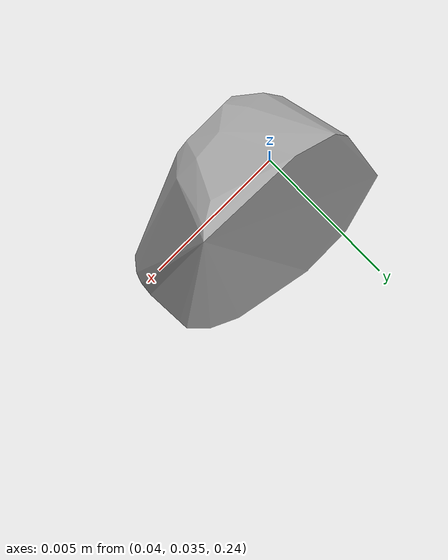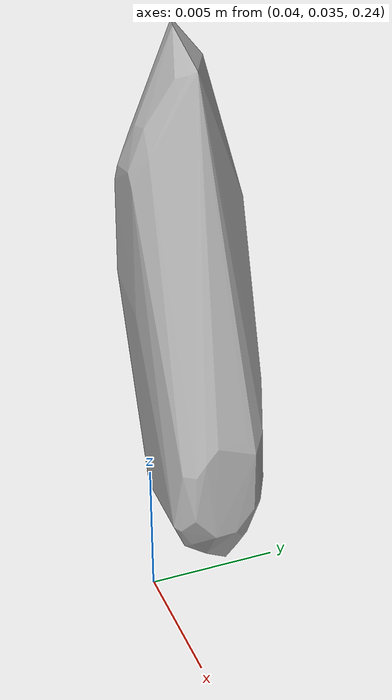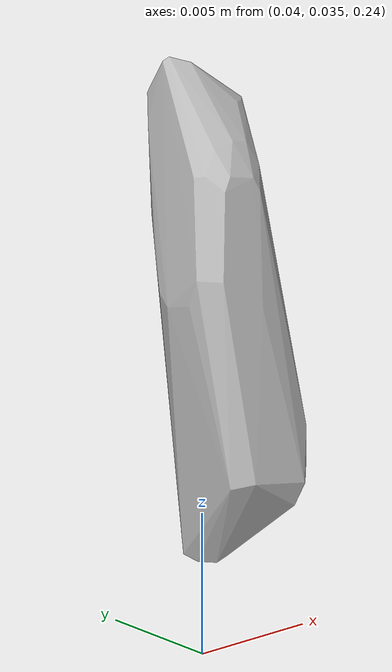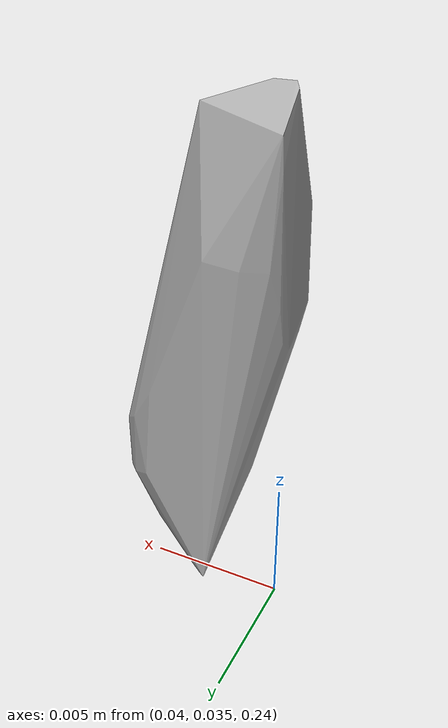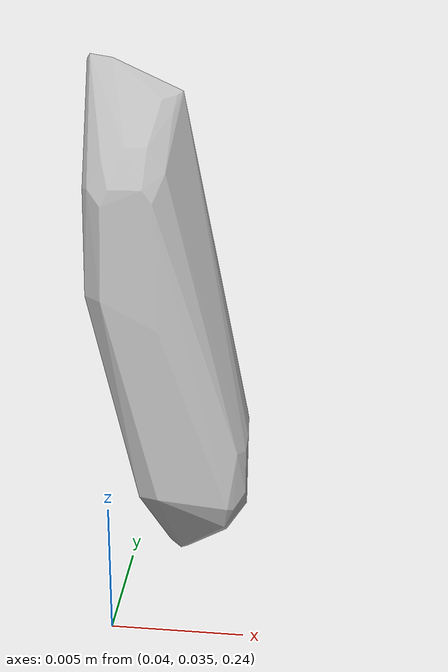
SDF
<?xml version="1.0"?>
<sdf version="1.7">
  <model name="vascular_partexport028">
    <link name="vascular_partexport028_body">
      <visual name="vascular_partexport028_visual">
        <geometry>
          <mesh>
            <uri>vascular_partexport028.obj</uri>
          </mesh>
        </geometry>
      </visual>
      <collision name="vascular_partexport028_collision">
        <geometry>
          <mesh>
            <uri>vascular_partexport028.obj</uri>
          </mesh>
        </geometry>
      </collision>
    </link>
    <frame name="vascular_partexport028_center">
      <pose relative_to="vascular_partexport028_body">0 0 0 0 0 0</pose>
    </frame>
  </model>
</sdf>
